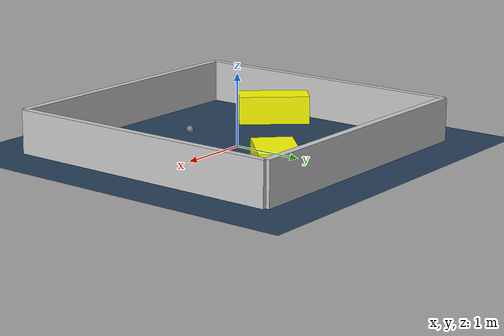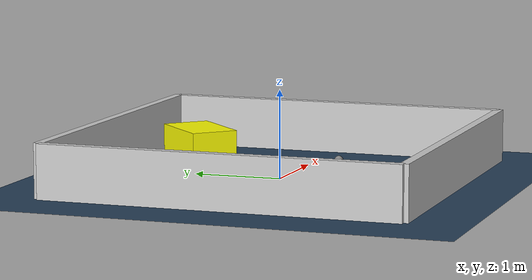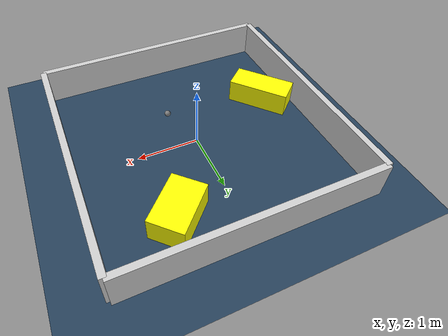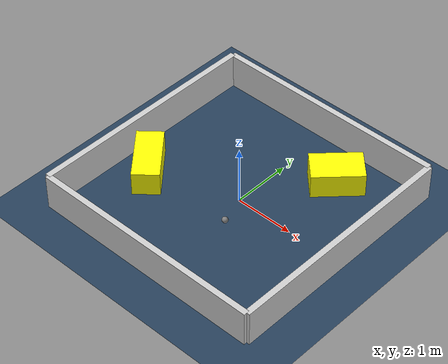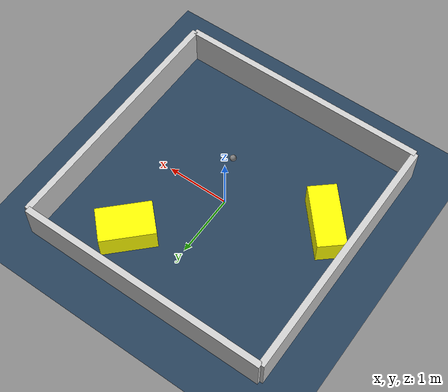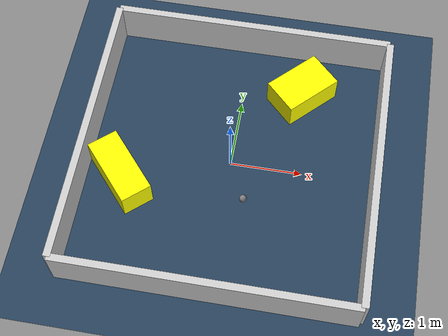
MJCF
<?xml version="1.0" ?>
<mujoco model="generated_environment">
  <option timestep="0.01" integrator="RK4" cone="elliptic"/>
  <default>
    <geom density="1"/>
  </default>
  <asset>
    <texture builtin="gradient" height="3072" rgb1="0.3 0.5 0.7" rgb2="0 0 0" type="skybox" width="512"/>
    <texture builtin="checker" height="300" mark="edge" markrgb="0.8 0.8 0.8" name="groundplane" rgb1="0.2 0.3 0.4" rgb2="0.1 0.2 0.3" type="2d" width="300"/>
    <material name="groundplane" reflectance="0.2" texrepeat="5 5" texture="groundplane" texuniform="true"/>
    <material name="robot" rgba="0.0 1.0 0.0 1"/>
  </asset>
  <worldbody>
    <light dir="0 0 -1" directional="true" pos="0 0 1.5"/>
    <geom condim="4" friction="1.0 0.005 0.001" material="groundplane" name="floor" size="0 0 0.05" type="plane"/>
    <body name="walls">
      <geom name="wall_1" condim="4" pos="-2.0 0.0 0.3" rgba="0.800000011920929 0.800000011920929 0.800000011920929 1.0" size="0.05 2.0 0.3" type="box"/>
      <geom name="wall_2" condim="4" pos="2.0 0.0 0.3" rgba="0.800000011920929 0.800000011920929 0.800000011920929 1.0" size="0.05 2.0 0.3" type="box"/>
      <geom name="wall_3" condim="4" pos="0.0 -2.0 0.3" rgba="0.800000011920929 0.800000011920929 0.800000011920929 1.0" size="2.0 0.05 0.3" type="box"/>
      <geom name="wall_4" condim="4" pos="0.0 2.0 0.3" rgba="0.800000011920929 0.800000011920929 0.800000011920929 1.0" size="2.0 0.05 0.3" type="box"/>
    </body>
    <body name="robot">
      <joint name="joint_x" type="slide" pos="0 0 0" axis="1 0 0"/>
      <joint name="joint_y" type="slide" pos="0 0 0" axis="0 1 0"/>
      <geom name="robot" type="sphere" pos="0.2741459461841642 -0.6003125375017775 0.2" size="0.05" mass="5." friction="1.0 0.005 0.0001" condim="4"/>
      <site name="sensor_ball"/>
    </body>
    <body name="obstacle_1_movable">
      <geom name="obstacle_1_movable" condim="4" pos="0.8345857426104559 1.2713812981502657 0.2" euler="0 0 224.99500463818748" friction="1.0 0.005 0.001" rgba="1 1 0 1" size="0.42012890033401173 0.2737899913907503 0.2" type="box" mass="0.1"/>
      <joint type="free"/>
    </body>
    <body name="obstacle_2_movable">
      <geom name="obstacle_2_movable" condim="4" pos="-1.4519777552776463 -0.48506556596123884 0.2" euler="0 0 311.0410721163543" friction="1.0 0.005 0.001" rgba="1 1 0 1" size="0.5027929137564608 0.21935364997014456 0.2" type="box" mass="0.1"/>
      <joint type="free"/>
    </body>
  </worldbody>
  <actuator>
    <motor name="actuator_x" joint="joint_x" gear="1" ctrlrange="-1 1"/>
    <motor name="actuator_y" joint="joint_y" gear="1" ctrlrange="-1 1"/>
  </actuator>
</mujoco>
